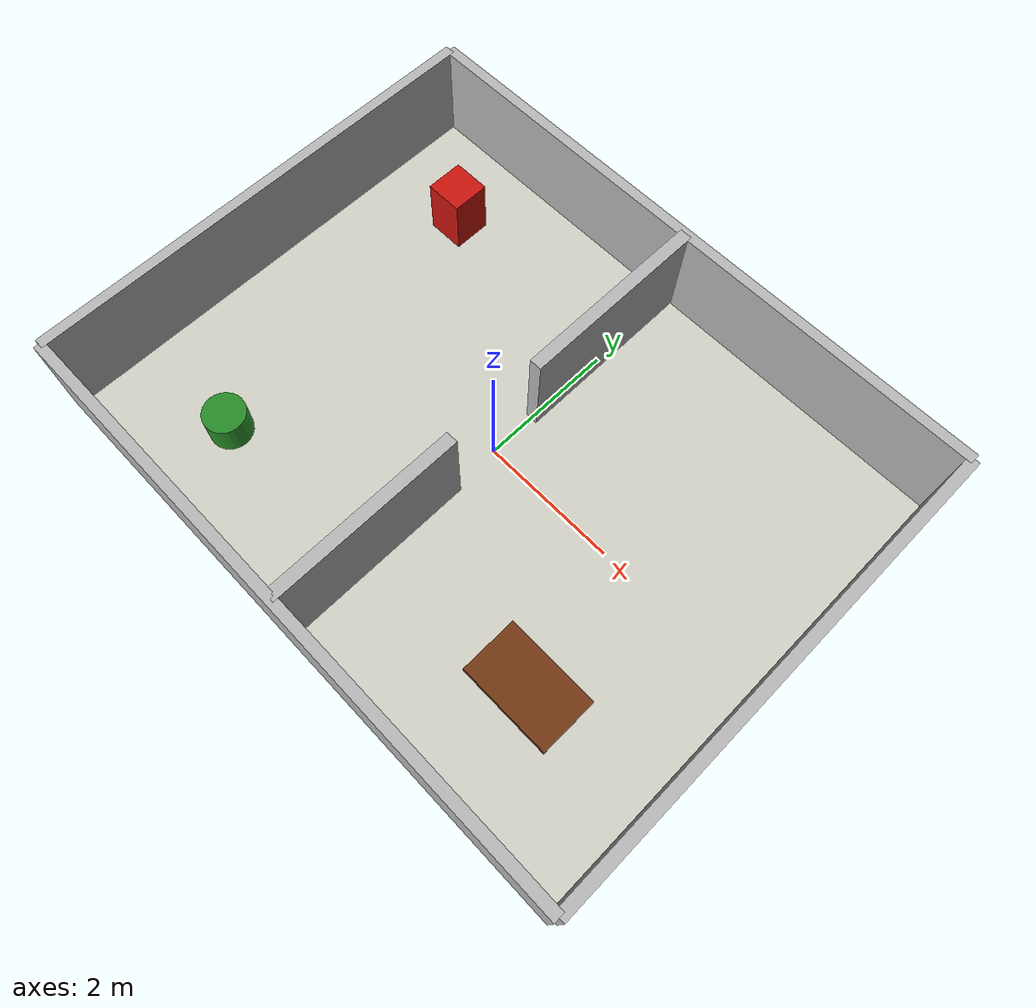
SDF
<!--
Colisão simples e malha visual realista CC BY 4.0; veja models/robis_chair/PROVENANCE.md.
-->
<sdf version="1.9">
 <world name="semantic_lab">
  <gravity>0 0 -9.8</gravity>
  <plugin filename="gz-sim-physics-system" name="gz::sim::systems::Physics"/>
  <plugin filename="gz-sim-user-commands-system" name="gz::sim::systems::UserCommands"/>
  <plugin filename="gz-sim-scene-broadcaster-system" name="gz::sim::systems::SceneBroadcaster"/>
  <plugin filename="gz-sim-sensors-system" name="gz::sim::systems::Sensors">
   <render_engine>ogre2</render_engine>
  </plugin>
  <light type="directional" name="sun">
   <pose>0 0 8 0 0 0</pose>
   <diffuse>0.9 0.9 0.9 1</diffuse>
   <direction>-0.3 0.2 -1</direction>
  </light>
  <model name="floor">
   <static>true</static>
   <link name="link">
    <collision name="collision">
     <geometry><plane><normal>0 0 1</normal><size>9 7</size></plane></geometry>
    </collision>
    <visual name="visual">
     <geometry><plane><normal>0 0 1</normal><size>9 7</size></plane></geometry>
     <material><diffuse>0.82 0.82 0.78 1</diffuse></material>
    </visual>
   </link>
  </model>
  <model name="walls">
   <static>true</static>
   <link name="link">
    <collision name="north">
     <pose>0 3.5 0.75 0 0 0</pose>
     <geometry><box><size>9 0.15 1.5</size></box></geometry>
    </collision>
    <visual name="north_v">
     <pose>0 3.5 0.75 0 0 0</pose>
     <geometry><box><size>9 0.15 1.5</size></box></geometry>
    </visual>
    <collision name="south">
     <pose>0 -3.5 0.75 0 0 0</pose>
     <geometry><box><size>9 0.15 1.5</size></box></geometry>
    </collision>
    <visual name="south_v">
     <pose>0 -3.5 0.75 0 0 0</pose>
     <geometry><box><size>9 0.15 1.5</size></box></geometry>
    </visual>
    <collision name="east">
     <pose>4.5 0 0.75 0 0 0</pose>
     <geometry><box><size>0.15 7 1.5</size></box></geometry>
    </collision>
    <visual name="east_v">
     <pose>4.5 0 0.75 0 0 0</pose>
     <geometry><box><size>0.15 7 1.5</size></box></geometry>
    </visual>
    <collision name="west">
     <pose>-4.5 0 0.75 0 0 0</pose>
     <geometry><box><size>0.15 7 1.5</size></box></geometry>
    </collision>
    <visual name="west_v">
     <pose>-4.5 0 0.75 0 0 0</pose>
     <geometry><box><size>0.15 7 1.5</size></box></geometry>
    </visual>
    <collision name="divider_a">
     <pose>0 -2.1 0.75 0 0 0</pose>
     <geometry><box><size>0.18 2.8 1.5</size></box></geometry>
    </collision>
    <visual name="divider_a_v">
     <pose>0 -2.1 0.75 0 0 0</pose>
     <geometry><box><size>0.18 2.8 1.5</size></box></geometry>
    </visual>
    <collision name="divider_b">
     <pose>0 2.1 0.75 0 0 0</pose>
     <geometry><box><size>0.18 2.8 1.5</size></box></geometry>
    </collision>
    <visual name="divider_b_v">
     <pose>0 2.1 0.75 0 0 0</pose>
     <geometry><box><size>0.18 2.8 1.5</size></box></geometry>
    </visual>
   </link>
  </model>
  <model name="red_chair">
   <static>true</static>
   <pose>-3.0 2.2 0 0 0 -1.57</pose>
   <link name="chair">
    <collision name="body">
     <pose>0 0 0.45 0 0 0</pose>
     <geometry><box><size>0.55 0.55 0.9</size></box></geometry>
    </collision>
    <visual name="body">
     <pose>0 0 0.45 0 0 0</pose>
     <geometry><box><size>0.55 0.55 0.9</size></box></geometry>
     <material><diffuse>0.8 0.08 0.05 1</diffuse></material>
    </visual>
   </link>
  </model>
  <model name="table_distractor">
   <static>true</static>
   <pose>2.6 -2.0 0 0 0 0</pose>
   <link name="table">
    <collision name="top">
     <pose>0 0 0.72 0 0 0</pose>
     <geometry><box><size>1.3 0.8 0.1</size></box></geometry>
    </collision>
    <visual name="top_v">
     <pose>0 0 0.72 0 0 0</pose>
     <geometry><box><size>1.3 0.8 0.1</size></box></geometry>
     <material><diffuse>0.45 0.22 0.08 1</diffuse></material>
    </visual>
   </link>
  </model>
  <model name="plant_distractor">
   <static>true</static>
   <pose>-2.7 -2.3 0 0 0 0</pose>
   <link name="plant">
    <collision name="pot">
     <pose>0 0 0.25 0 0 0</pose>
     <geometry><cylinder><radius>0.3</radius><length>0.5</length></cylinder></geometry>
    </collision>
    <visual name="pot_v">
     <pose>0 0 0.25 0 0 0</pose>
     <geometry><cylinder><radius>0.3</radius><length>0.5</length></cylinder></geometry>
     <material><diffuse>0.15 0.55 0.15 1</diffuse></material>
    </visual>
   </link>
  </model>
 </world>
</sdf>
